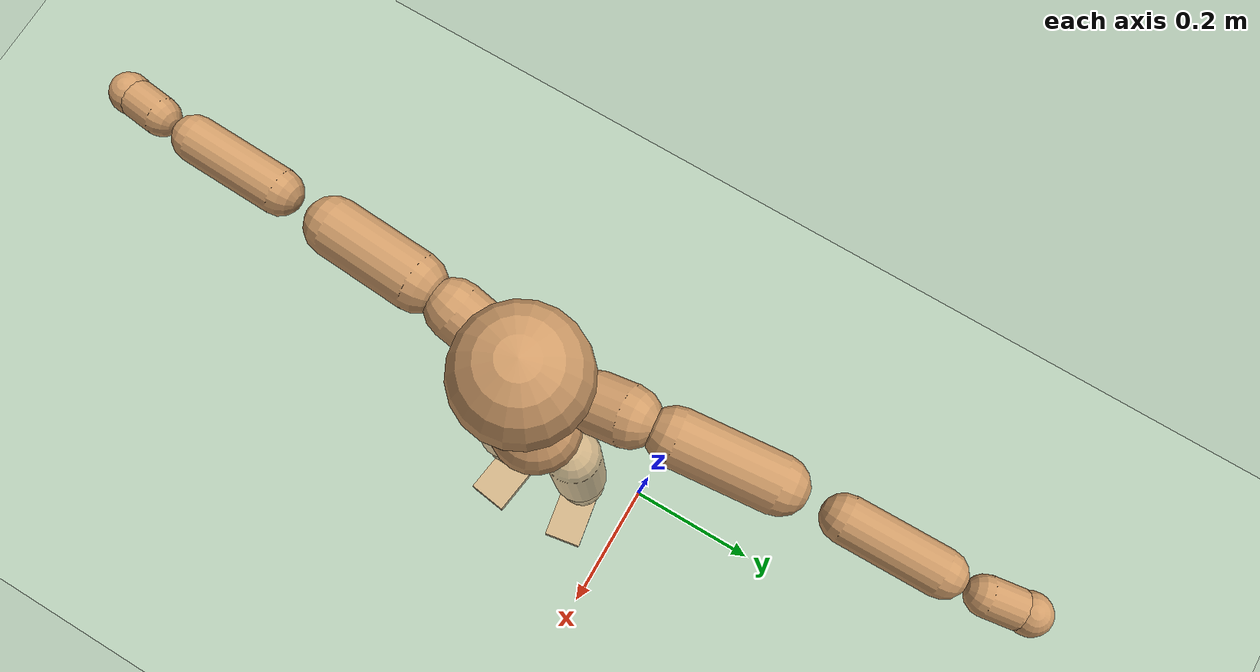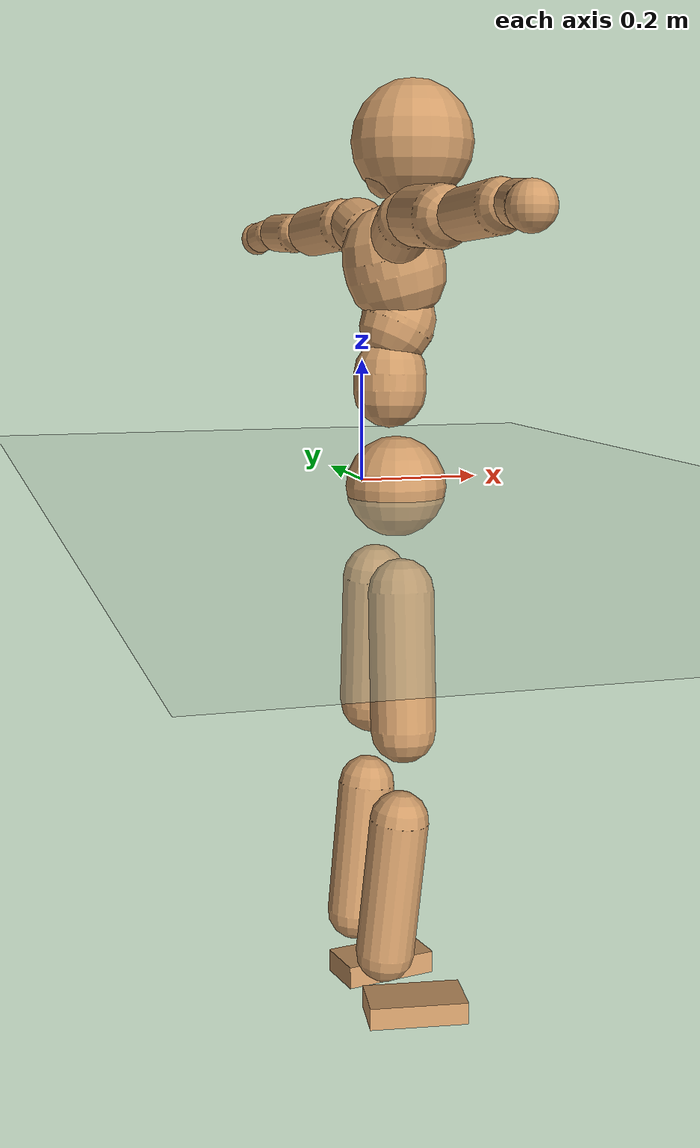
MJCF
<mujoco model="humanoid">
  <compiler coordinate="local"/>
  <default>
    <joint damping="0.0" armature="0.01" stiffness="0.0" limited="true"/>
    <geom conaffinity="1" condim="3" contype="7" margin="0.001" rgba="0.8 0.6 .4 1"/>
  </default>
  <asset>
    <texture type="skybox" builtin="gradient" rgb1=".4 .5 .6" rgb2="0 0 0" width="100" height="100"/>
    <texture builtin="flat" height="1278" mark="cross" markrgb="1 1 1" name="texgeom" random="0.01" rgb1="0.8 0.6 0.4" rgb2="0.8 0.6 0.4" type="cube" width="127"/>
    <texture builtin="checker" height="100" name="texplane" rgb1="0 0 0" rgb2="0.8 0.8 0.8" type="2d" width="100"/>
    <material name="MatPlane" reflectance="0.5" shininess="1" specular="1" texrepeat="60 60" texture="texplane"/>
    <material name="geom" texture="texgeom" texuniform="true"/>
  </asset>
  <worldbody>
    <light cutoff="100" diffuse="1 1 1" dir="-0 0 -1.3" directional="true" exponent="1" pos="0 0 1.3" specular=".1 .1 .1"/>
    <geom conaffinity="1" condim="3" name="floor" pos="0 0 0" rgba="0.8 0.9 0.8 1" size="100 100 .2" type="plane" material="MatPlane"/>
    <body name="Pelvis" pos="-0.0034 -0.2003 0.0138">
      <freejoint name="Pelvis"/>
      <geom type="sphere" contype="1" conaffinity="1" density="500" size="0.0784" pos="0.0000 0.0000 0.0000" name="Pelvis"/>
      <body name="L_Hip" pos="-0.014 0.0586 -0.0838">
        <joint name="L_Hip_x" type="hinge" pos="0 0 0" axis="1 0 0" stiffness="800" damping="80" armature="0.02" range="-180.0000 180.0000"/>
        <joint name="L_Hip_y" type="hinge" pos="0 0 0" axis="0 1 0" stiffness="800" damping="80" armature="0.02" range="-180.0000 180.0000"/>
        <joint name="L_Hip_z" type="hinge" pos="0 0 0" axis="0 0 1" stiffness="800" damping="80" armature="0.02" range="-180.0000 180.0000"/>
        <geom type="capsule" contype="1" conaffinity="1" density="500" fromto="-0.0001 0.0065 -0.0700 -0.0003 0.0259 -0.2802" size="0.0517" name="L_Hip"/>
        <body name="L_Knee" pos="-0.0003 0.0324 -0.3502">
          <joint name="L_Knee_x" type="hinge" pos="0 0 0" axis="1 0 0" stiffness="800" damping="80" armature="0.02" range="-180.0000 180.0000"/>
          <joint name="L_Knee_y" type="hinge" pos="0 0 0" axis="0 1 0" stiffness="800" damping="80" armature="0.02" range="-180.0000 180.0000"/>
          <joint name="L_Knee_z" type="hinge" pos="0 0 0" axis="0 0 1" stiffness="800" damping="80" armature="0.02" range="-180.0000 180.0000"/>
          <geom type="capsule" contype="1" conaffinity="1" density="500" fromto="-0.0072 -0.0023 -0.0730 -0.0288 -0.0092 -0.2918" size="0.046" name="L_Knee"/>
          <body name="L_Ankle" pos="-0.036 -0.0115 -0.3648">
            <joint name="L_Ankle_x" type="hinge" pos="0 0 0" axis="1 0 0" stiffness="800" damping="80" armature="0.02" range="-180.0000 180.0000"/>
            <joint name="L_Ankle_y" type="hinge" pos="0 0 0" axis="0 1 0" stiffness="800" damping="80" armature="0.02" range="-180.0000 180.0000"/>
            <joint name="L_Ankle_z" type="hinge" pos="0 0 0" axis="0 0 1" stiffness="800" damping="80" armature="0.02" range="-180.0000 180.0000"/>
            <geom type="box" contype="1" conaffinity="1" density="500" pos="0.0543 0.0094 -0.0257" size="0.0773 0.0413 0.0184" quat="0.9963 0.0000 0.0000 0.0856" name="L_Ankle"/>
            <body name="L_Toe" pos="0.1087 0.0188 -0.0513">
              <joint name="L_Toe_x" type="hinge" pos="0 0 0" axis="1 0 0" stiffness="500" damping="50" armature="0.02" range="-180.0000 180.0000"/>
              <joint name="L_Toe_y" type="hinge" pos="0 0 0" axis="0 1 0" stiffness="500" damping="50" armature="0.02" range="-180.0000 180.0000"/>
              <joint name="L_Toe_z" type="hinge" pos="0 0 0" axis="0 0 1" stiffness="500" damping="50" armature="0.02" range="-180.0000 180.0000"/>
              <geom type="box" contype="1" conaffinity="1" density="500" pos="0.0000 0.0000 0.0258" size="0.0008 0.0021 0.0009" quat="0.9957 0.0000 0.0000 0.0928" name="L_Toe"/>
            </body>
          </body>
        </body>
      </body>
      <body name="R_Hip" pos="-0.0104 -0.0568 -0.083">
        <joint name="R_Hip_x" type="hinge" pos="0 0 0" axis="1 0 0" stiffness="800" damping="80" armature="0.02" range="-180.0000 180.0000"/>
        <joint name="R_Hip_y" type="hinge" pos="0 0 0" axis="0 1 0" stiffness="800" damping="80" armature="0.02" range="-180.0000 180.0000"/>
        <joint name="R_Hip_z" type="hinge" pos="0 0 0" axis="0 0 1" stiffness="800" damping="80" armature="0.02" range="-180.0000 180.0000"/>
        <geom type="capsule" contype="1" conaffinity="1" density="500" fromto="-0.0007 -0.0073 -0.0714 -0.0027 -0.0291 -0.2855" size="0.051" name="R_Hip"/>
        <body name="R_Knee" pos="-0.0034 -0.0364 -0.3569">
          <joint name="R_Knee_x" type="hinge" pos="0 0 0" axis="1 0 0" stiffness="800" damping="80" armature="0.02" range="-180.0000 180.0000"/>
          <joint name="R_Knee_y" type="hinge" pos="0 0 0" axis="0 1 0" stiffness="800" damping="80" armature="0.02" range="-180.0000 180.0000"/>
          <joint name="R_Knee_z" type="hinge" pos="0 0 0" axis="0 0 1" stiffness="800" damping="80" armature="0.02" range="-180.0000 180.0000"/>
          <geom type="capsule" contype="1" conaffinity="1" density="500" fromto="-0.0067 0.0029 -0.0726 -0.0269 0.0116 -0.2906" size="0.0464" name="R_Knee"/>
          <body name="R_Ankle" pos="-0.0336 0.0144 -0.3632">
            <joint name="R_Ankle_x" type="hinge" pos="0 0 0" axis="1 0 0" stiffness="800" damping="80" armature="0.02" range="-180.0000 180.0000"/>
            <joint name="R_Ankle_y" type="hinge" pos="0 0 0" axis="0 1 0" stiffness="800" damping="80" armature="0.02" range="-180.0000 180.0000"/>
            <joint name="R_Ankle_z" type="hinge" pos="0 0 0" axis="0 0 1" stiffness="800" damping="80" armature="0.02" range="-180.0000 180.0000"/>
            <geom type="box" contype="1" conaffinity="1" density="500" pos="0.0556 -0.0077 -0.0213" size="0.0785 0.0432 0.0177" quat="0.9976 0.0000 0.0000 -0.0687" name="R_Ankle"/>
            <body name="R_Toe" pos="0.1113 -0.0154 -0.0426">
              <joint name="R_Toe_x" type="hinge" pos="0 0 0" axis="1 0 0" stiffness="500" damping="50" armature="0.02" range="-180.0000 180.0000"/>
              <joint name="R_Toe_y" type="hinge" pos="0 0 0" axis="0 1 0" stiffness="500" damping="50" armature="0.02" range="-180.0000 180.0000"/>
              <joint name="R_Toe_z" type="hinge" pos="0 0 0" axis="0 0 1" stiffness="500" damping="50" armature="0.02" range="-180.0000 180.0000"/>
              <geom type="box" contype="1" conaffinity="1" density="500" pos="0.0000 0.0000 0.0237" size="0.0008 0.0021 0.001" quat="0.9983 0.0000 0.0000 -0.0589" name="R_Toe"/>
            </body>
          </body>
        </body>
      </body>
      <body name="Torso" pos="-0.0121 -0.003 0.0958">
        <joint name="Torso_x" type="hinge" pos="0 0 0" axis="1 0 0" stiffness="1000" damping="100" armature="0.02" range="-180.0000 180.0000"/>
        <joint name="Torso_y" type="hinge" pos="0 0 0" axis="0 1 0" stiffness="1000" damping="100" armature="0.02" range="-180.0000 180.0000"/>
        <joint name="Torso_z" type="hinge" pos="0 0 0" axis="0 0 1" stiffness="1000" damping="100" armature="0.02" range="-180.0000 180.0000"/>
        <geom type="capsule" contype="1" conaffinity="1" density="500" fromto="0.0018 0.0029 0.0783 0.0012 0.0019 0.0522" size="0.056358" name="Torso"/>
        <body name="Spine" pos="0.0031 0.0048 0.1304">
          <joint name="Spine_x" type="hinge" pos="0 0 0" axis="1 0 0" stiffness="1000" damping="100" armature="0.02" range="-180.0000 180.0000"/>
          <joint name="Spine_y" type="hinge" pos="0 0 0" axis="0 1 0" stiffness="1000" damping="100" armature="0.02" range="-180.0000 180.0000"/>
          <joint name="Spine_z" type="hinge" pos="0 0 0" axis="0 0 1" stiffness="1000" damping="100" armature="0.02" range="-180.0000 180.0000"/>
          <geom type="capsule" contype="1" conaffinity="1" density="500" fromto="0.0140 0.0019 0.0284 0.0094 0.0013 0.0189" size="0.057753" name="Spine"/>
          <body name="Chest" pos="0.0234 0.0031 0.0474">
            <joint name="Chest_x" type="hinge" pos="0 0 0" axis="1 0 0" stiffness="1000" damping="100" armature="0.02" range="-180.0000 180.0000"/>
            <joint name="Chest_y" type="hinge" pos="0 0 0" axis="0 1 0" stiffness="1000" damping="100" armature="0.02" range="-180.0000 180.0000"/>
            <joint name="Chest_z" type="hinge" pos="0 0 0" axis="0 0 1" stiffness="1000" damping="100" armature="0.02" range="-180.0000 180.0000"/>
            <geom type="capsule" contype="1" conaffinity="1" density="500" fromto="-0.0207 -0.0010 0.0789 -0.0138 -0.0007 0.0526" size="0.077469" name="Chest"/>
            <body name="Neck" pos="-0.0381 -0.0033 0.1858">
              <joint name="Neck_x" type="hinge" pos="0 0 0" axis="1 0 0" stiffness="500" damping="50" armature="0.02" range="-180.0000 180.0000"/>
              <joint name="Neck_y" type="hinge" pos="0 0 0" axis="0 1 0" stiffness="500" damping="50" armature="0.02" range="-180.0000 180.0000"/>
              <joint name="Neck_z" type="hinge" pos="0 0 0" axis="0 0 1" stiffness="500" damping="50" armature="0.02" range="-180.0000 180.0000"/>
              <geom type="capsule" contype="1" conaffinity="1" density="500" fromto="0.0099 0.0008 0.0125 0.0397 0.0032 0.0500" size="0.035619" name="Neck"/>
              <body name="Head" pos="0.0496 0.004 0.0626">
                <joint name="Head_x" type="hinge" pos="0 0 0" axis="1 0 0" stiffness="500" damping="50" armature="0.02" range="-180.0000 180.0000"/>
                <joint name="Head_y" type="hinge" pos="0 0 0" axis="0 1 0" stiffness="500" damping="50" armature="0.02" range="-180.0000 180.0000"/>
                <joint name="Head_z" type="hinge" pos="0 0 0" axis="0 0 1" stiffness="500" damping="50" armature="0.02" range="-180.0000 180.0000"/>
                <geom type="sphere" contype="1" conaffinity="1" density="500" size="0.0937" pos="0.0000 0.0000 0.0000" name="Head"/>
              </body>
            </body>
            <body name="L_Thorax" pos="-0.031 0.0699 0.1057">
              <joint name="L_Thorax_x" type="hinge" pos="0 0 0" axis="1 0 0" stiffness="500" damping="50" armature="0.02" range="-180.0000 180.0000"/>
              <joint name="L_Thorax_y" type="hinge" pos="0 0 0" axis="0 1 0" stiffness="500" damping="50" armature="0.02" range="-180.0000 180.0000"/>
              <joint name="L_Thorax_z" type="hinge" pos="0 0 0" axis="0 0 1" stiffness="500" damping="50" armature="0.02" range="-180.0000 180.0000"/>
              <geom type="capsule" contype="1" conaffinity="1" density="500" fromto="-0.0012 0.0162 0.0058 -0.0048 0.0646 0.0232" size="0.044" name="L_Thorax"/>
              <body name="L_Shoulder" pos="-0.006 0.0808 0.029">
                <joint name="L_Shoulder_x" type="hinge" pos="0 0 0" axis="1 0 0" stiffness="500" damping="50" armature="0.02" range="-720.0000 720.0000"/>
                <joint name="L_Shoulder_y" type="hinge" pos="0 0 0" axis="0 1 0" stiffness="500" damping="50" armature="0.02" range="-720.0000 720.0000"/>
                <joint name="L_Shoulder_z" type="hinge" pos="0 0 0" axis="0 0 1" stiffness="500" damping="50" armature="0.02" range="-720.0000 720.0000"/>
                <geom type="capsule" contype="1" conaffinity="1" density="500" fromto="-0.0051 0.0486 -0.0023 -0.0206 0.1942 -0.0093" size="0.0416" name="L_Shoulder"/>
                <body name="L_Elbow" pos="-0.0257 0.2428 -0.0116">
                  <joint name="L_Elbow_x" type="hinge" pos="0 0 0" axis="1 0 0" stiffness="500" damping="50" armature="0.02" range="-720.0000 720.0000"/>
                  <joint name="L_Elbow_y" type="hinge" pos="0 0 0" axis="0 1 0" stiffness="500" damping="50" armature="0.02" range="-720.0000 720.0000"/>
                  <joint name="L_Elbow_z" type="hinge" pos="0 0 0" axis="0 0 1" stiffness="500" damping="50" armature="0.02" range="-720.0000 720.0000"/>
                  <geom type="capsule" contype="1" conaffinity="1" density="500" fromto="-0.0005 0.0455 0.0016 -0.0019 0.1820 0.0062" size="0.0338" name="L_Elbow"/>
                  <body name="L_Wrist" pos="-0.0024 0.2274 0.0078">
                    <joint name="L_Wrist_x" type="hinge" pos="0 0 0" axis="1 0 0" stiffness="300" damping="30" armature="0.02" range="-180.0000 180.0000"/>
                    <joint name="L_Wrist_y" type="hinge" pos="0 0 0" axis="0 1 0" stiffness="300" damping="30" armature="0.02" range="-180.0000 180.0000"/>
                    <joint name="L_Wrist_z" type="hinge" pos="0 0 0" axis="0 0 1" stiffness="300" damping="30" armature="0.02" range="-180.0000 180.0000"/>
                    <geom type="capsule" contype="1" conaffinity="1" density="500" fromto="-0.0025 0.0149 -0.0018 -0.0100 0.0596 -0.0073" size="0.0278" name="L_Wrist"/>
                    <body name="L_Hand" pos="-0.0126 0.0745 -0.0091">
                      <joint name="L_Hand_x" type="hinge" pos="0 0 0" axis="1 0 0" stiffness="300" damping="30" armature="0.02" range="-180.0000 180.0000"/>
                      <joint name="L_Hand_y" type="hinge" pos="0 0 0" axis="0 1 0" stiffness="300" damping="30" armature="0.02" range="-180.0000 180.0000"/>
                      <joint name="L_Hand_z" type="hinge" pos="0 0 0" axis="0 0 1" stiffness="300" damping="30" armature="0.02" range="-180.0000 180.0000"/>
                      <geom type="sphere" contype="1" conaffinity="1" density="500" size="0.0300" pos="0.0000 0.0000 0.0000" name="L_Hand"/>
                    </body>
                  </body>
                </body>
              </body>
            </body>
            <body name="R_Thorax" pos="-0.0344 -0.0717 0.1032">
              <joint name="R_Thorax_x" type="hinge" pos="0 0 0" axis="1 0 0" stiffness="500" damping="50" armature="0.02" range="-180.0000 180.0000"/>
              <joint name="R_Thorax_y" type="hinge" pos="0 0 0" axis="0 1 0" stiffness="500" damping="50" armature="0.02" range="-180.0000 180.0000"/>
              <joint name="R_Thorax_z" type="hinge" pos="0 0 0" axis="0 0 1" stiffness="500" damping="50" armature="0.02" range="-180.0000 180.0000"/>
              <geom type="capsule" contype="1" conaffinity="1" density="500" fromto="-0.0019 -0.0168 0.0058 -0.0077 -0.0674 0.0233" size="0.043" name="R_Thorax"/>
              <body name="R_Shoulder" pos="-0.0096 -0.0842 0.0291">
                <joint name="R_Shoulder_x" type="hinge" pos="0 0 0" axis="1 0 0" stiffness="500" damping="50" armature="0.02" range="-720.0000 720.0000"/>
                <joint name="R_Shoulder_y" type="hinge" pos="0 0 0" axis="0 1 0" stiffness="500" damping="50" armature="0.02" range="-720.0000 720.0000"/>
                <joint name="R_Shoulder_z" type="hinge" pos="0 0 0" axis="0 0 1" stiffness="500" damping="50" armature="0.02" range="-720.0000 720.0000"/>
                <geom type="capsule" contype="1" conaffinity="1" density="500" fromto="-0.0031 -0.0464 -0.0021 -0.0125 -0.1856 -0.0083" size="0.043" name="R_Shoulder"/>
                <body name="R_Elbow" pos="-0.0156 -0.2321 -0.0104">
                  <joint name="R_Elbow_x" type="hinge" pos="0 0 0" axis="1 0 0" stiffness="500" damping="50" armature="0.02" range="-720.0000 720.0000"/>
                  <joint name="R_Elbow_y" type="hinge" pos="0 0 0" axis="0 1 0" stiffness="500" damping="50" armature="0.02" range="-720.0000 720.0000"/>
                  <joint name="R_Elbow_z" type="hinge" pos="0 0 0" axis="0 0 1" stiffness="500" damping="50" armature="0.02" range="-720.0000 720.0000"/>
                  <geom type="capsule" contype="1" conaffinity="1" density="500" fromto="-0.0013 -0.0466 0.0012 -0.0050 -0.1865 0.0050" size="0.034" name="R_Elbow"/>
                  <body name="R_Wrist" pos="-0.0063 -0.2331 0.0062">
                    <joint name="R_Wrist_x" type="hinge" pos="0 0 0" axis="1 0 0" stiffness="300" damping="30" armature="0.02" range="-180.0000 180.0000"/>
                    <joint name="R_Wrist_y" type="hinge" pos="0 0 0" axis="0 1 0" stiffness="300" damping="30" armature="0.02" range="-180.0000 180.0000"/>
                    <joint name="R_Wrist_z" type="hinge" pos="0 0 0" axis="0 0 1" stiffness="300" damping="30" armature="0.02" range="-180.0000 180.0000"/>
                    <geom type="capsule" contype="1" conaffinity="1" density="500" fromto="-0.0019 -0.0149 -0.0013 -0.0075 -0.0594 -0.0053" size="0.0283" name="R_Wrist"/>
                    <body name="R_Hand" pos="-0.0094 -0.0743 -0.0067">
                      <joint name="R_Hand_x" type="hinge" pos="0 0 0" axis="1 0 0" stiffness="300" damping="30" armature="0.02" range="-180.0000 180.0000"/>
                      <joint name="R_Hand_y" type="hinge" pos="0 0 0" axis="0 1 0" stiffness="300" damping="30" armature="0.02" range="-180.0000 180.0000"/>
                      <joint name="R_Hand_z" type="hinge" pos="0 0 0" axis="0 0 1" stiffness="300" damping="30" armature="0.02" range="-180.0000 180.0000"/>
                      <geom type="sphere" contype="1" conaffinity="1" density="500" size="0.0299" pos="0.0000 0.0000 0.0000" name="R_Hand"/>
                    </body>
                  </body>
                </body>
              </body>
            </body>
          </body>
        </body>
      </body>
    </body>
  </worldbody>
  <actuator>
    <motor name="L_Hip_x" joint="L_Hip_x" gear="500"/>
    <motor name="L_Hip_y" joint="L_Hip_y" gear="500"/>
    <motor name="L_Hip_z" joint="L_Hip_z" gear="500"/>
    <motor name="L_Knee_x" joint="L_Knee_x" gear="500"/>
    <motor name="L_Knee_y" joint="L_Knee_y" gear="500"/>
    <motor name="L_Knee_z" joint="L_Knee_z" gear="500"/>
    <motor name="L_Ankle_x" joint="L_Ankle_x" gear="500"/>
    <motor name="L_Ankle_y" joint="L_Ankle_y" gear="500"/>
    <motor name="L_Ankle_z" joint="L_Ankle_z" gear="500"/>
    <motor name="L_Toe_x" joint="L_Toe_x" gear="500"/>
    <motor name="L_Toe_y" joint="L_Toe_y" gear="500"/>
    <motor name="L_Toe_z" joint="L_Toe_z" gear="500"/>
    <motor name="R_Hip_x" joint="R_Hip_x" gear="500"/>
    <motor name="R_Hip_y" joint="R_Hip_y" gear="500"/>
    <motor name="R_Hip_z" joint="R_Hip_z" gear="500"/>
    <motor name="R_Knee_x" joint="R_Knee_x" gear="500"/>
    <motor name="R_Knee_y" joint="R_Knee_y" gear="500"/>
    <motor name="R_Knee_z" joint="R_Knee_z" gear="500"/>
    <motor name="R_Ankle_x" joint="R_Ankle_x" gear="500"/>
    <motor name="R_Ankle_y" joint="R_Ankle_y" gear="500"/>
    <motor name="R_Ankle_z" joint="R_Ankle_z" gear="500"/>
    <motor name="R_Toe_x" joint="R_Toe_x" gear="500"/>
    <motor name="R_Toe_y" joint="R_Toe_y" gear="500"/>
    <motor name="R_Toe_z" joint="R_Toe_z" gear="500"/>
    <motor name="Torso_x" joint="Torso_x" gear="500"/>
    <motor name="Torso_y" joint="Torso_y" gear="500"/>
    <motor name="Torso_z" joint="Torso_z" gear="500"/>
    <motor name="Spine_x" joint="Spine_x" gear="500"/>
    <motor name="Spine_y" joint="Spine_y" gear="500"/>
    <motor name="Spine_z" joint="Spine_z" gear="500"/>
    <motor name="Chest_x" joint="Chest_x" gear="500"/>
    <motor name="Chest_y" joint="Chest_y" gear="500"/>
    <motor name="Chest_z" joint="Chest_z" gear="500"/>
    <motor name="Neck_x" joint="Neck_x" gear="500"/>
    <motor name="Neck_y" joint="Neck_y" gear="500"/>
    <motor name="Neck_z" joint="Neck_z" gear="500"/>
    <motor name="Head_x" joint="Head_x" gear="500"/>
    <motor name="Head_y" joint="Head_y" gear="500"/>
    <motor name="Head_z" joint="Head_z" gear="500"/>
    <motor name="L_Thorax_x" joint="L_Thorax_x" gear="500"/>
    <motor name="L_Thorax_y" joint="L_Thorax_y" gear="500"/>
    <motor name="L_Thorax_z" joint="L_Thorax_z" gear="500"/>
    <motor name="L_Shoulder_x" joint="L_Shoulder_x" gear="500"/>
    <motor name="L_Shoulder_y" joint="L_Shoulder_y" gear="500"/>
    <motor name="L_Shoulder_z" joint="L_Shoulder_z" gear="500"/>
    <motor name="L_Elbow_x" joint="L_Elbow_x" gear="500"/>
    <motor name="L_Elbow_y" joint="L_Elbow_y" gear="500"/>
    <motor name="L_Elbow_z" joint="L_Elbow_z" gear="500"/>
    <motor name="L_Wrist_x" joint="L_Wrist_x" gear="500"/>
    <motor name="L_Wrist_y" joint="L_Wrist_y" gear="500"/>
    <motor name="L_Wrist_z" joint="L_Wrist_z" gear="500"/>
    <motor name="L_Hand_x" joint="L_Hand_x" gear="500"/>
    <motor name="L_Hand_y" joint="L_Hand_y" gear="500"/>
    <motor name="L_Hand_z" joint="L_Hand_z" gear="500"/>
    <motor name="R_Thorax_x" joint="R_Thorax_x" gear="500"/>
    <motor name="R_Thorax_y" joint="R_Thorax_y" gear="500"/>
    <motor name="R_Thorax_z" joint="R_Thorax_z" gear="500"/>
    <motor name="R_Shoulder_x" joint="R_Shoulder_x" gear="500"/>
    <motor name="R_Shoulder_y" joint="R_Shoulder_y" gear="500"/>
    <motor name="R_Shoulder_z" joint="R_Shoulder_z" gear="500"/>
    <motor name="R_Elbow_x" joint="R_Elbow_x" gear="500"/>
    <motor name="R_Elbow_y" joint="R_Elbow_y" gear="500"/>
    <motor name="R_Elbow_z" joint="R_Elbow_z" gear="500"/>
    <motor name="R_Wrist_x" joint="R_Wrist_x" gear="500"/>
    <motor name="R_Wrist_y" joint="R_Wrist_y" gear="500"/>
    <motor name="R_Wrist_z" joint="R_Wrist_z" gear="500"/>
    <motor name="R_Hand_x" joint="R_Hand_x" gear="500"/>
    <motor name="R_Hand_y" joint="R_Hand_y" gear="500"/>
    <motor name="R_Hand_z" joint="R_Hand_z" gear="500"/>
  </actuator>
  <contact>
    <exclude body1="Torso" body2="Chest"/>
    <exclude body1="Head" body2="Chest"/>
    <exclude body1="R_Knee" body2="R_Toe"/>
    <exclude body1="R_Knee" body2="L_Ankle"/>
    <exclude body1="R_Knee" body2="L_Toe"/>
    <exclude body1="L_Knee" body2="L_Toe"/>
    <exclude body1="L_Knee" body2="R_Ankle"/>
    <exclude body1="L_Knee" body2="R_Toe"/>
    <exclude body1="L_Shoulder" body2="Chest"/>
    <exclude body1="R_Shoulder" body2="Chest"/>
  </contact>
  <sensor/>
  <size njmax="700" nconmax="700"/>
</mujoco>
